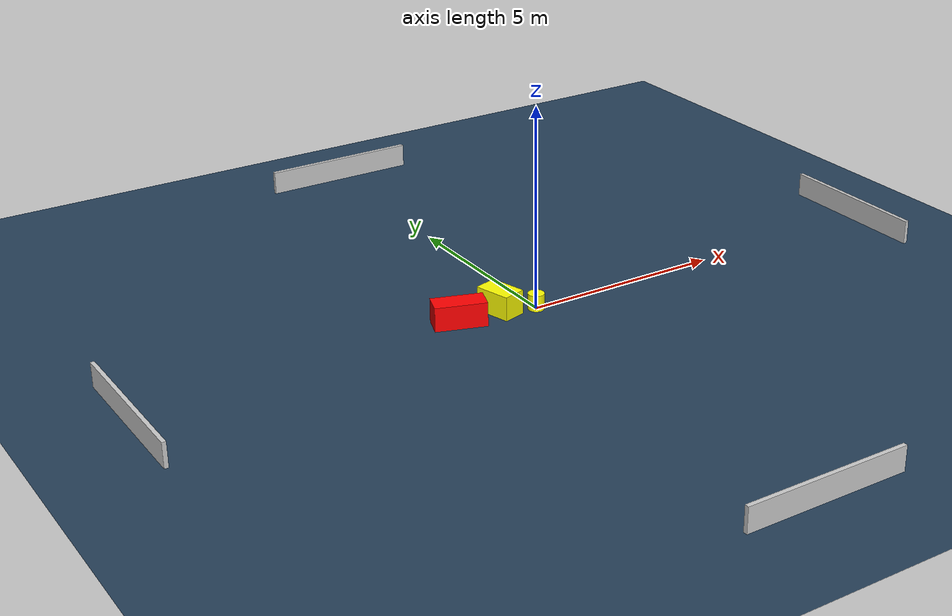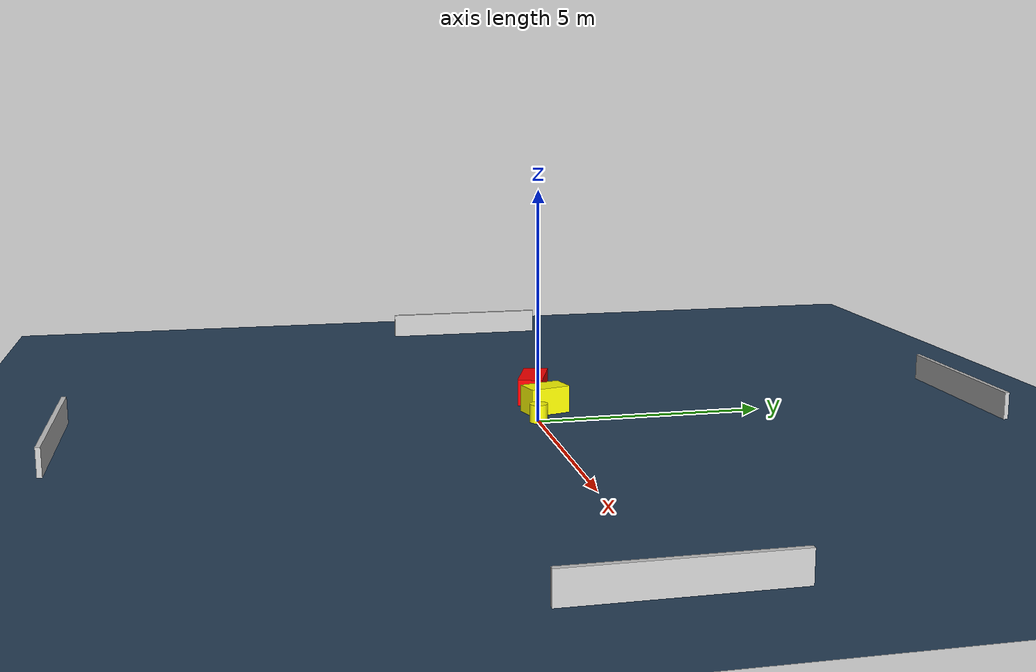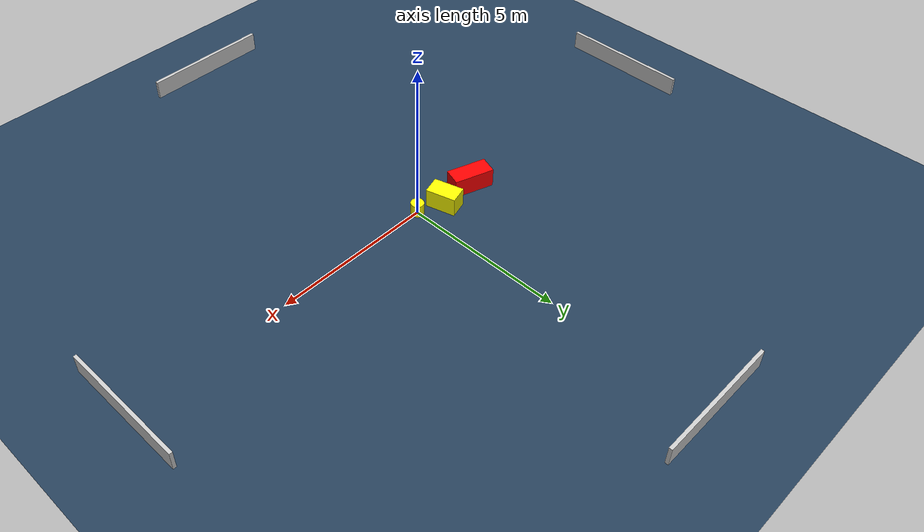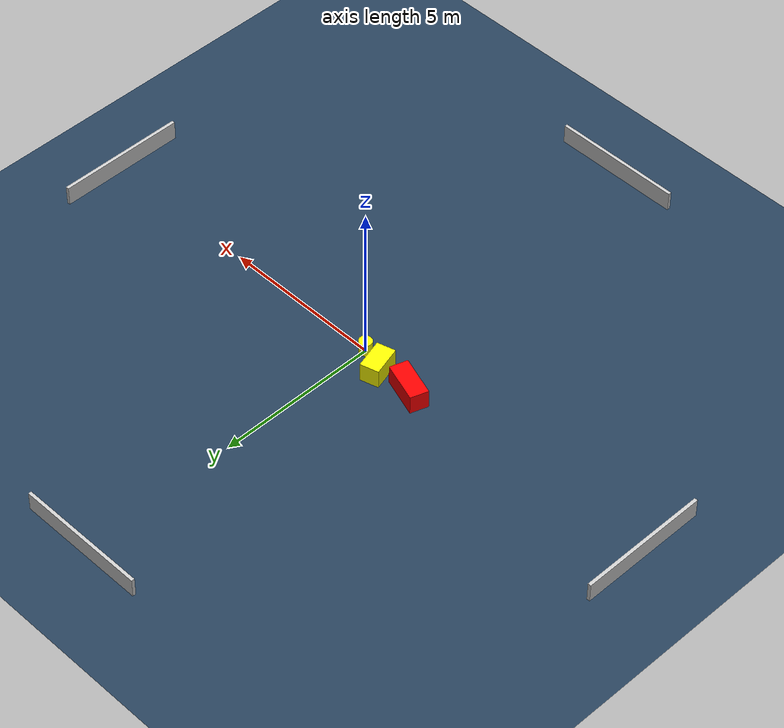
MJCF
<?xml version="1.0" ?>
<mujoco model="generated_environment">
  <option timestep="0.01" integrator="RK4" cone="elliptic"/>
  <default>
    <geom density="1"/>
  </default>
  <asset>
    <texture builtin="gradient" height="3072" name="skybox" rgb1="0.3 0.5 0.7" rgb2="0 0 0" type="skybox" width="512"/>
    <texture builtin="checker" height="300" name="groundplane" rgb1="0.2 0.3 0.4" rgb2="0.1 0.2 0.3" type="2d" width="300"/>
    <material name="groundplane" reflectance="0.2" texrepeat="5 5" texture="groundplane"/>
  </asset>
  <worldbody>
    <light dir="0 0 -1" directional="true" pos="0 0 1.5"/>
    <geom condim="3" friction="0.5 0.005 0.001" material="groundplane" name="floor" pos="0 0 0" size="0 0 0.05" type="plane"/>
    <body name="walls">
      <geom name="wall_1" condim="4" pos="-10.0 0.0 0.3" rgba="0.800000011920929 0.800000011920929 0.800000011920929 1.0" size="0.05 2.0 0.3" type="box"/>
      <geom name="wall_2" condim="4" pos="10.0 0.0 0.3" rgba="0.800000011920929 0.800000011920929 0.800000011920929 1.0" size="0.05 2.0 0.3" type="box"/>
      <geom name="wall_3" condim="4" pos="0.0 -10.0 0.3" rgba="0.800000011920929 0.800000011920929 0.800000011920929 1.0" size="2.0 0.05 0.3" type="box"/>
      <geom name="wall_4" condim="4" pos="0.0 10.0 0.3" rgba="0.800000011920929 0.800000011920929 0.800000011920929 1.0" size="2.0 0.05 0.3" type="box"/>
    </body>
    <body name="robot">
      <joint name="joint_x" type="slide" pos="0 0 0" axis="1 0 0"/>
      <joint name="joint_y" type="slide" pos="0 0 0" axis="0 1 0"/>
      <geom name="robot" type="cylinder" pos="0.0 0.0 0.2" size="0.2 0.2 0.0" mass="5.0" friction="1.0 0.005 0.0001" condim="4" rgba="1.0 1.0 0.0 1.0"/>
    </body>
    <body name="obstacle_1_movable">
      <geom name="obstacle_1_movable" condim="4" pos="-0.8002693134647839 0.3246762362864487 0.3" euler="0 0 105.6134045462597" friction="0.0 0.005 0.001" rgba="1.0 1.0 0.0 1.0" size="0.4629128158037515 0.2865502683650086 0.3" type="box" mass="0.1"/>
      <joint type="free"/>
    </body>
    <body name="obstacle_2_static">
      <geom name="obstacle_2_static" condim="4" pos="-1.9381293074727717 0.2883274356995856 0.3" euler="0 0 161.52517384436956" friction="0.0 0.005 0.001" rgba="1.0 0.0 0.0 1.0" size="0.6249451888941775 0.279648989530974 0.3" type="box"/>
    </body>
  </worldbody>
  <actuator>
    <motor name="actuator_x" joint="joint_x" gear="1" ctrlrange="-1 1"/>
    <motor name="actuator_y" joint="joint_y" gear="1" ctrlrange="-1 1"/>
  </actuator>
</mujoco>
